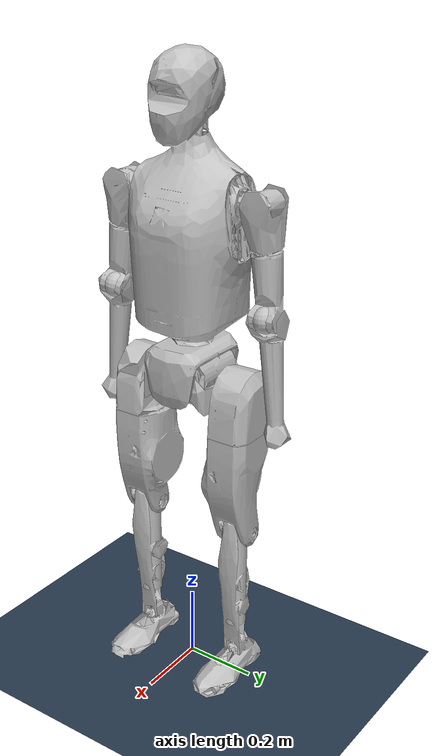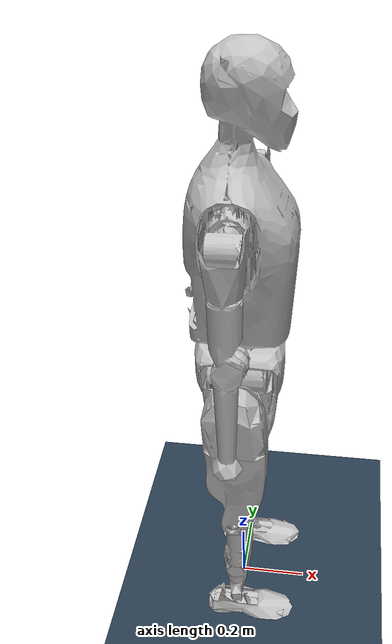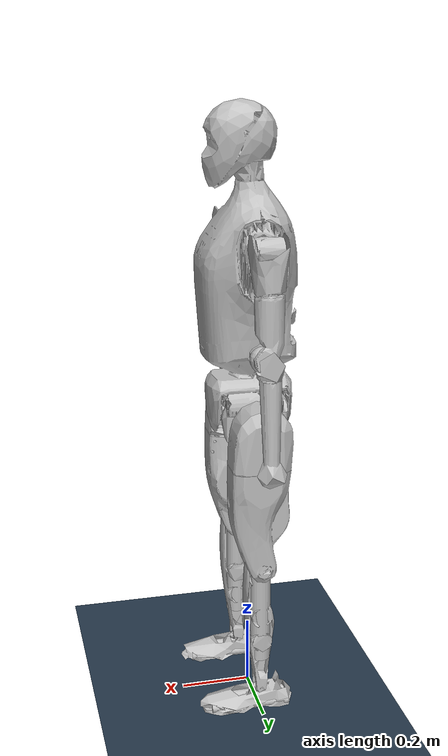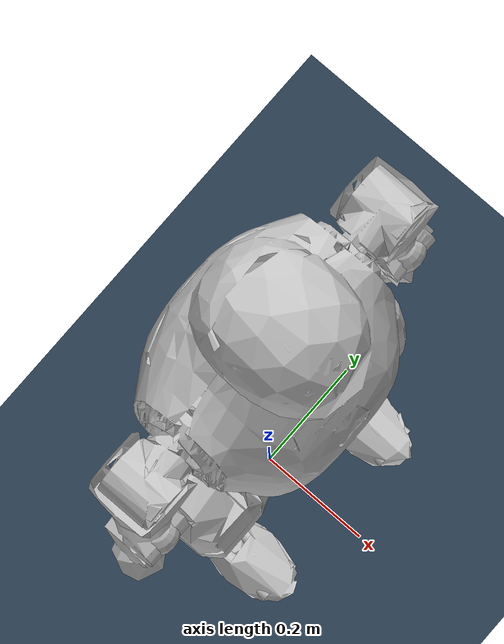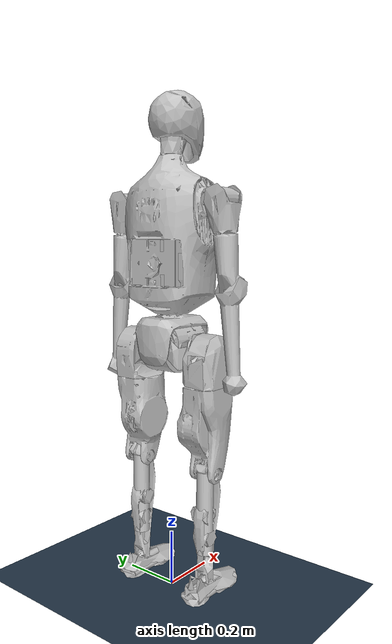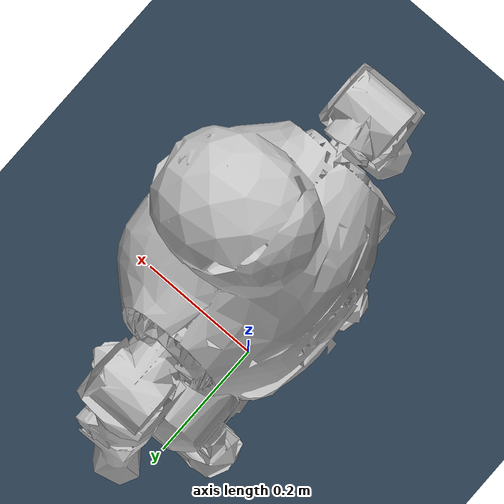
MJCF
<mujoco model="tienkung2_EVT_V4_urdf">
  <option gravity='0 0 -9.81' solver='PGS'/>
  <option integrator="implicitfast" />
  <size njmax="500" nconmax="100" />
  <compiler angle="radian" meshdir="../meshes/" eulerseq="zyx"/>
  <default>
    <joint type="hinge" limited="true" />
  </default>
  <asset>
    <texture type="skybox" builtin="gradient" rgb1="0.3 0.5 0.7" rgb2="0 0 0" width="512" height="512" />
    <texture name="texplane" type="2d" builtin="checker" rgb1=".2 .3 .4" rgb2=".1 0.15 0.2" width="512" height="512" mark="cross" markrgb=".8 .8 .8" />
    <material name="matplane" reflectance="0.3" texture="texplane" texrepeat="1 1" texuniform="true" />
    <mesh name="pelvis" file="pelvis.STL"/>
    <mesh name="hip_roll_l_link" file="hip_roll_l_link.STL"/>
    <mesh name="hip_pitch_l_link" file="hip_pitch_l_link.STL"/>
    <mesh name="hip_yaw_l_link" file="hip_yaw_l_link.STL"/>
    <mesh name="knee_pitch_l_link" file="knee_pitch_l_link.STL"/>
    <mesh name="ankle_pitch_l_link" file="ankle_pitch_l_link.STL"/>
    <mesh name="ankle_roll_l_link" file="ankle_roll_l_link.STL"/>
    <mesh name="hip_roll_r_link" file="hip_roll_r_link.STL"/>
    <mesh name="hip_pitch_r_link" file="hip_pitch_r_link.STL"/>
    <mesh name="hip_yaw_r_link" file="hip_yaw_r_link.STL"/>
    <mesh name="knee_pitch_r_link" file="knee_pitch_r_link.STL"/>
    <mesh name="ankle_pitch_r_link" file="ankle_pitch_r_link.STL"/>
    <mesh name="ankle_roll_r_link" file="ankle_roll_r_link.STL"/>
    <mesh name="shoulder_pitch_l_link" file="shoulder_pitch_l_link.STL"/>
    <mesh name="shoulder_roll_l_link" file="shoulder_roll_l_link.STL"/>
    <mesh name="shoulder_yaw_l_link" file="shoulder_yaw_l_link.STL"/>
    <mesh name="elbow_pitch_l_link" file="elbow_pitch_l_link.STL"/>
    <mesh name="shoulder_pitch_r_link" file="shoulder_pitch_r_link.STL"/>
    <mesh name="shoulder_roll_r_link" file="shoulder_roll_r_link.STL"/>
    <mesh name="shoulder_yaw_r_link" file="shoulder_yaw_r_link.STL"/>
    <mesh name="elbow_pitch_r_link" file="elbow_pitch_r_link.STL"/>
  </asset>

  <worldbody>
    <light directional="true" diffuse=".4 .4 .4" specular="0.1 0.1 0.1" pos="0 0 5.0" dir="0 0 -1" castshadow="false" />
    <light directional="true" diffuse=".6 .6 .6" specular="0.2 0.2 0.2" pos="0 0 4" dir="0 0 -1" />
    <geom name="floor" pos="0 0 0" size="100 100 1" type="plane" material="matplane" margin="0.001" contype="1" conaffinity="15" friction="1 0.005 0.0001" />

    <body name="Base_link" pos="0 0 1.0">
      <freejoint name="root" />
      <inertial pos="0.001537 0.000283 0.177608" quat="0.997803 1.42418e-06 0.0154267 -0.0644277" mass="27.7717" diaginertia="0.952918 0.922015 0.196947"/>
      <geom type="mesh" contype="0" conaffinity="0" group="1" density="0" rgba="0.752941 0.752941 0.752941 1" mesh="pelvis"/>
      <geom size="0.085 0.055" pos="-0.02 0 -0.11" quat="0.707388 0.706825 0 0" type="cylinder" rgba="0.752941 0.752941 0.752941 1"/>
      <camera name="camera1" mode="targetbody" pos="5 0 0.8" euler="1.57 0 1.57" fovy="60"/>
      <camera name="camera2" mode="track" pos="5 0 0.8" euler="1.57 0 1.57" fovy="60"/>
      <site name='imu' size='0.01' pos='0.0 0 0.0'/>
      <body name="hip_roll_l_link" pos="0 0.028 -0.0857">
        <inertial pos="-0.001848 0.055849 -0.036017" quat="0.242041 0.661501 0.270146 0.656394" mass="0.672983" diaginertia="0.0035288 0.00296741 0.00101678"/>
        <joint name="hip_roll_l_joint" pos="0 0 0" axis="1 0 0" range="-0.79 0.79" damping="10"/>
        <geom type="mesh" contype="0" conaffinity="0" group="1" density="0" rgba="0.752941 0.752941 0.752941 1" mesh="hip_roll_l_link"/>
        <body name="hip_pitch_l_link" pos="0 0.122 -0.046">
          <inertial pos="0.001081 -8.8e-05 -0.013133" quat="0.703908 -0.0464278 -0.0604083 0.706193" mass="3.95191" diaginertia="0.0155995 0.0108766 0.00930186"/>
          <joint name="hip_pitch_l_joint" pos="0 0 0" axis="0 1 0" range="-2.79 2.09" damping="10"/>
          <geom type="mesh" contype="0" conaffinity="0" group="1" density="0" rgba="0.752941 0.752941 0.752941 1" mesh="hip_pitch_l_link"/>
          <body name="hip_yaw_l_link" pos="0 -0.00015 -0.0987">
            <inertial pos="0.004102 -0.006542 -0.121068" quat="0.685682 -0.0129439 0.0149542 0.727633" mass="6.6708" diaginertia="0.0533758 0.0495596 0.0178685"/>
            <joint name="hip_yaw_l_joint" pos="0 0 0" axis="0 0 1" range="-1.04 1.04" damping="5"/>
            <geom type="mesh" contype="0" conaffinity="0" group="1" density="0" rgba="0.752941 0.752941 0.752941 1" mesh="hip_yaw_l_link"/>
            <geom size="0.03 0.1" pos="0 0 -0.1" type="cylinder" rgba="0.752941 0.752941 0.752941 1"/>
            <body name="knee_pitch_l_link" pos="0 0.00010715 -0.3013">
              <inertial pos="0.00018 0.001915 -0.178653" quat="0.741662 0.0200239 0.0403837 0.669257" mass="2.31269" diaginertia="0.0309319 0.0304477 0.00269639"/>
              <joint name="knee_pitch_l_joint" pos="0 0 0" axis="0 1 0" range="0 2.39" damping="10"/>
              <geom type="mesh" contype="0" conaffinity="0" group="1" density="0" rgba="0.752941 0.752941 0.752941 1" mesh="knee_pitch_l_link"/>
              <geom size="0.03 0.15" pos="0 0 -0.15" type="cylinder" rgba="0.752941 0.752941 0.752941 1"/>
              <body name="ankle_pitch_l_link" pos="0 0 -0.4">
                <inertial pos="0 0 0" quat="0.5 0.5 -0.5 0.5" mass="0.111609" diaginertia="3.2e-05 1.8e-05 1.8e-05"/>
                <joint name="ankle_pitch_l_joint" pos="0 0 0" axis="0 1 0" range="-1.22 0.5236" damping="2.5"/>
                <geom type="mesh" contype="0" conaffinity="0" group="1" density="0" rgba="0.752941 0.752941 0.752941 1" mesh="ankle_pitch_l_link"/>
                <body name="ankle_roll_l_link">
                  <inertial pos="0.021235 0 -0.032883" quat="0 0.747289 0 0.6645" mass="1.01738" diaginertia="0.0063132 0.006055 0.000954799"/>
                  <joint name="ankle_roll_l_joint" pos="0 0 0" axis="1 0 0" range="-0.4363 0.4363" damping="1.4"/>
                  <geom type="mesh" contype="0" conaffinity="0" group="1" density="0" rgba="0.752941 0.752941 0.752941 1" mesh="ankle_roll_l_link"/>
                  <geom name="toe1_left" contype="2" conaffinity="1" size="0.015 0.115" pos="0.035 0.025 -0.042" quat="0.707105 0 0.707108 0" type="cylinder" rgba="0.752941 0.752941 0.752941 1"/>
                  <geom name="toe2_left" contype="2" conaffinity="1" size="0.015 0.115" pos="0.035 -0.025 -0.042" quat="0.707105 0 0.707108 0" type="cylinder" rgba="0.752941 0.752941 0.752941 1"/>
                </body>
              </body>
            </body>
          </body>
        </body>
      </body>
      <body name="hip_roll_r_link" pos="0 -0.028 -0.0857">
        <inertial pos="-0.001848 -0.055849 -0.036017" quat="-0.242041 0.661501 -0.270146 0.656394" mass="0.672983" diaginertia="0.0035288 0.00296741 0.00101678"/>
        <joint name="hip_roll_r_joint" pos="0 0 0" axis="1 0 0" range="-0.79 0.79" damping="10"/>
        <geom type="mesh" contype="0" conaffinity="0" group="1" density="0" rgba="0.752941 0.752941 0.752941 1" mesh="hip_roll_r_link"/>
        <body name="hip_pitch_r_link" pos="0 -0.122 -0.046">
          <inertial pos="0.001081 8.8e-05 -0.013133" quat="0.706193 -0.0604083 -0.0464278 0.703908" mass="3.95191" diaginertia="0.0155995 0.0108766 0.00930186"/>
          <joint name="hip_pitch_r_joint" pos="0 0 0" axis="0 1 0" range="-2.79 2.09" damping="10"/>
          <geom type="mesh" contype="0" conaffinity="0" group="1" density="0" rgba="0.752941 0.752941 0.752941 1" mesh="hip_pitch_r_link"/>
          <body name="hip_yaw_r_link" pos="0 0 -0.0987">
            <inertial pos="0.004102 0.006542 -0.121068" quat="0.727633 0.0149542 -0.0129439 0.685682" mass="6.6708" diaginertia="0.0533758 0.0495596 0.0178685"/>
            <joint name="hip_yaw_r_joint" pos="0 0 0" axis="0 0 1" range="-1.04 1.04" damping="5"/>
            <geom type="mesh" contype="0" conaffinity="0" group="1" density="0" rgba="0.752941 0.752941 0.752941 1" mesh="hip_yaw_r_link"/>
            <geom size="0.03 0.1" pos="0 0 -0.1" type="cylinder" rgba="0.752941 0.752941 0.752941 1"/>
            <body name="knee_pitch_r_link" pos="0 0.00035002 -0.3013">
              <inertial pos="0.00018 -0.001915 -0.178653" quat="0.669257 0.0403837 0.0200239 0.741662" mass="2.31269" diaginertia="0.0309319 0.0304477 0.00269639"/>
              <joint name="knee_pitch_r_joint" pos="0 0 0" axis="0 1 0" range="0 2.39" damping="10"/>
              <geom type="mesh" contype="0" conaffinity="0" group="1" density="0" rgba="0.752941 0.752941 0.752941 1" mesh="knee_pitch_r_link"/>
              <geom size="0.03 0.15" pos="0 0 -0.15" type="cylinder" rgba="0.752941 0.752941 0.752941 1"/>
              <body name="ankle_pitch_r_link" pos="0 0.00074981 -0.4">
                <inertial pos="0 0 0" quat="0.5 0.5 -0.5 0.5" mass="0.111609" diaginertia="3.2e-05 1.8e-05 1.8e-05"/>
                <joint name="ankle_pitch_r_joint" pos="0 0 0" axis="0 1 0" range="-1.22 0.5236" damping="2.5"/>
                <geom type="mesh" contype="0" conaffinity="0" group="1" density="0" rgba="0.752941 0.752941 0.752941 1" mesh="ankle_pitch_r_link"/>
                <body name="ankle_roll_r_link">
                  <inertial pos="0.021235 0 -0.032883" quat="0 0.747289 0 0.6645" mass="1.01738" diaginertia="0.0063132 0.006055 0.000954799"/>
                  <joint name="ankle_roll_r_joint" pos="0 0 0" axis="1 0 0" range="-0.4363 0.4363" damping="1.4"/>
                  <geom type="mesh" contype="0" conaffinity="0" group="1" density="0" rgba="0.752941 0.752941 0.752941 1" mesh="ankle_roll_r_link"/>
                  <geom name="toe1_right" contype="2" conaffinity="1" size="0.015 0.115" pos="0.035 0.025 -0.042" quat="0.707105 0 0.707108 0" type="cylinder" rgba="0.752941 0.752941 0.752941 1"/>
                  <geom name="toe2_right" contype="2" conaffinity="1" size="0.015 0.115" pos="0.035 -0.025 -0.042" quat="0.707105 0 0.707108 0" type="cylinder" rgba="0.752941 0.752941 0.752941 1"/>
                </body>
              </body>
            </body>
          </body>
        </body>
      </body>
      <body name="shoulder_pitch_l_link" pos="0 0.14034 0.37677" quat="0.999048 0.0436192 0 0">
        <inertial pos="0.006486 0.068343 0.000219" quat="0.591341 0.393139 -0.57492 0.406478" mass="0.469057" diaginertia="0.000468095 0.000406799 0.000362107"/>
        <joint name="shoulder_pitch_l_joint" pos="0 0 0" axis="0 1 0" range="-2.96 2.96" damping="3"/>
        <geom type="mesh" contype="0" conaffinity="0" group="1" density="0" rgba="0.752941 0.752941 0.752941 1" mesh="shoulder_pitch_l_link"/>
        <body name="shoulder_roll_l_link" pos="0 0.073 0">
          <inertial pos="-0.000165 0.001557 -0.049098" quat="0.706276 -0.0203759 0.0112258 0.707554" mass="0.298029" diaginertia="0.00099885 0.000881052 0.000573098"/>
          <joint name="shoulder_roll_l_joint" pos="0 0 0" axis="1 0 0" range="-0.2618 3.4" damping="1.5"/>
          <geom type="mesh" contype="0" conaffinity="0" group="1" density="0" rgba="0.752941 0.752941 0.752941 1" mesh="shoulder_roll_l_link"/>
          <geom size="0.035" rgba="0.752941 0.752941 0.752941 1"/>
          <body name="shoulder_yaw_l_link" pos="0 0 -0.13">
            <inertial pos="0.00809 -0.00102 -0.082881" quat="0.996315 -0.0129283 -0.0731393 0.0428919" mass="0.93608" diaginertia="0.0041934 0.00415703 0.000708565"/>
            <joint name="shoulder_yaw_l_joint" pos="0 0 0" axis="0 0 1" range="-2.96 2.96" damping="1"/>
            <geom type="mesh" contype="0" conaffinity="0" group="1" density="0" rgba="0.752941 0.752941 0.752941 1" mesh="shoulder_yaw_l_link"/>
            <body name="elbow_pitch_l_link" pos="0.019998 0 -0.15">
              <inertial pos="-0.019072 3.1e-05 -0.195441" quat="0.999198 0.00319299 0.00605842 0.0394438" mass="0.553799" diaginertia="0.00848749 0.00844401 0.000474499"/>
              <joint name="elbow_pitch_l_joint" pos="0 0 0" axis="0 1 0" range="-2.61 0.261" damping="1"/>
              <geom type="mesh" contype="0" conaffinity="0" group="1" density="0" rgba="0.752941 0.752941 0.752941 1" mesh="elbow_pitch_l_link"/>
              <geom size="0.035" rgba="0.752941 0.752941 0.752941 1"/>
              <body name="left_hand" pos="0 0 -0.3">
                <inertial pos="0 0 0" mass="1e-3" diaginertia="1e-12 1e-12 1e-12"/>
              </body>
            </body>
          </body>
        </body>
      </body>
      <body name="shoulder_pitch_r_link" pos="0 -0.14034 0.37677" quat="0.999048 -0.0436192 0 0">
        <inertial pos="0.006486 -0.068343 0.000219" quat="0.393139 0.591341 -0.406478 0.57492" mass="0.469057" diaginertia="0.000468095 0.000406799 0.000362107"/>
        <joint name="shoulder_pitch_r_joint" pos="0 0 0" axis="0 1 0" range="-2.96 2.96" damping="3"/>
        <geom type="mesh" contype="0" conaffinity="0" group="1" density="0" rgba="0.752941 0.752941 0.752941 1" mesh="shoulder_pitch_r_link"/>
        <body name="shoulder_roll_r_link" pos="0 -0.073 0">
          <inertial pos="-0.000165 -0.001557 -0.049098" quat="0.707554 0.0112258 -0.0203759 0.706276" mass="0.298029" diaginertia="0.00099885 0.000881052 0.000573098"/>
          <joint name="shoulder_roll_r_joint" pos="0 0 0" axis="1 0 0" range="-3.4 0.2618" damping="1.5"/>
          <geom type="mesh" contype="0" conaffinity="0" group="1" density="0" rgba="0.752941 0.752941 0.752941 1" mesh="shoulder_roll_r_link"/>
          <geom size="0.035" rgba="0.752941 0.752941 0.752941 1"/>
          <body name="shoulder_yaw_r_link" pos="0 0 -0.13">
            <inertial pos="0.00809 0.00102 -0.082881" quat="0.996315 0.0129283 -0.0731393 -0.0428919" mass="0.93608" diaginertia="0.0041934 0.00415703 0.000708565"/>
            <joint name="shoulder_yaw_r_joint" pos="0 0 0" axis="0 0 1" range="-2.96 2.96" damping="1"/>
            <geom type="mesh" contype="0" conaffinity="0" group="1" density="0" rgba="0.752941 0.752941 0.752941 1" mesh="shoulder_yaw_r_link"/>
            <body name="elbow_pitch_r_link" pos="0.020003 0 -0.15">
              <inertial pos="-0.019072 -3.1e-05 -0.195441" quat="0.999198 -0.00319299 0.00605842 -0.0394438" mass="0.553799" diaginertia="0.00848749 0.00844401 0.000474499"/>
              <joint name="elbow_pitch_r_joint" pos="0 0 0" axis="0 1 0" range="-2.61 0.261" damping="1"/>
              <geom type="mesh" contype="0" conaffinity="0" group="1" density="0" rgba="0.752941 0.752941 0.752941 1" mesh="elbow_pitch_r_link"/>
              <geom size="0.035" rgba="0.752941 0.752941 0.752941 1"/>
              <body name="right_hand" pos="0 0 -0.3">
                <inertial pos="0 0 0" mass="1e-3" diaginertia="1e-12 1e-12 1e-12"/>
              </body>
            </body>
          </body>
        </body>
      </body>
      <body name="head" pos="0 0 0.6">
        <inertial pos="0 0 0" mass="1e-3" diaginertia="1e-12 1e-12 1e-12"/>
      </body>
    </body>
  </worldbody>

  <actuator>
    <position name="hip_roll_l_joint" joint="hip_roll_l_joint" kp="700"/>
    <position name="hip_pitch_l_joint" joint="hip_pitch_l_joint" kp="700"/>
    <position name="hip_yaw_l_joint" joint="hip_yaw_l_joint" kp="500"/>
    <position name="knee_pitch_l_joint" joint="knee_pitch_l_joint" kp="700"/>
    <position name="ankle_pitch_l_joint" joint="ankle_pitch_l_joint" kp="30"/>
    <position name="ankle_roll_l_joint" joint="ankle_roll_l_joint" kp="16.8"/>

    <position name="hip_roll_r_joint" joint="hip_roll_r_joint" kp="700"/>
    <position name="hip_pitch_r_joint" joint="hip_pitch_r_joint" kp="700"/>
    <position name="hip_yaw_r_joint" joint="hip_yaw_r_joint" kp="500"/>
    <position name="knee_pitch_r_joint" joint="knee_pitch_r_joint" kp="700"/>
    <position name="ankle_pitch_r_joint" joint="ankle_pitch_r_joint" kp="30"/>
    <position name="ankle_roll_r_joint" joint="ankle_roll_r_joint" kp="16.8"/>

    <position name="shoulder_pitch_l_joint" joint="shoulder_pitch_l_joint" kp="60"/>
    <position name="shoulder_roll_l_joint" joint="shoulder_roll_l_joint" kp="20"/>
    <position name="shoulder_yaw_l_joint" joint="shoulder_yaw_l_joint" kp="10"/>
    <position name="elbow_pitch_l_joint" joint="elbow_pitch_l_joint" kp="10"/>

    <position name="shoulder_pitch_r_joint" joint="shoulder_pitch_r_joint" kp="60"/>
    <position name="shoulder_roll_r_joint" joint="shoulder_roll_r_joint" kp="20"/>
    <position name="shoulder_yaw_r_joint" joint="shoulder_yaw_r_joint" kp="10"/>
    <position name="elbow_pitch_r_joint" joint="elbow_pitch_r_joint" kp="10"/>

  </actuator>
  <sensor>
    <jointpos joint="hip_roll_l_joint" user="6"/>
    <jointpos joint="hip_pitch_l_joint" user="6"/>
    <jointpos joint="hip_yaw_l_joint" user="6"/>
    <jointpos joint="knee_pitch_l_joint" user="6"/>
    <jointpos joint="ankle_pitch_l_joint" user="6"/>
    <jointpos joint="ankle_roll_l_joint" user="6"/>
    <jointpos joint="hip_roll_r_joint" user="6"/>
    <jointpos joint="hip_pitch_r_joint" user="6"/>
    <jointpos joint="hip_yaw_r_joint" user="6"/>
    <jointpos joint="knee_pitch_r_joint" user="6"/>
    <jointpos joint="ankle_pitch_r_joint" user="6"/>
    <jointpos joint="ankle_roll_r_joint" user="6"/>
    <jointpos joint="shoulder_pitch_l_joint" user="6"/>
    <jointpos joint="shoulder_roll_l_joint" user="6"/>
    <jointpos joint="shoulder_yaw_l_joint" user="6"/>
    <jointpos joint="elbow_pitch_l_joint" user="6"/>
    <jointpos joint="shoulder_pitch_r_joint" user="6"/>
    <jointpos joint="shoulder_roll_r_joint" user="6"/>
    <jointpos joint="shoulder_yaw_r_joint" user="6"/>
    <jointpos joint="elbow_pitch_r_joint" user="6"/>

    <jointvel joint="hip_roll_l_joint" user="6"/>
    <jointvel joint="hip_pitch_l_joint" user="6"/>
    <jointvel joint="hip_yaw_l_joint" user="6"/>
    <jointvel joint="knee_pitch_l_joint" user="6"/>
    <jointvel joint="ankle_pitch_l_joint" user="6"/>
    <jointvel joint="ankle_roll_l_joint" user="6"/>
    <jointvel joint="hip_roll_r_joint" user="6"/>
    <jointvel joint="hip_pitch_r_joint" user="6"/>
    <jointvel joint="hip_yaw_r_joint" user="6"/>
    <jointvel joint="knee_pitch_r_joint" user="6"/>
    <jointvel joint="ankle_pitch_r_joint" user="6"/>
    <jointvel joint="ankle_roll_r_joint" user="6"/>
    <jointvel joint="shoulder_pitch_l_joint" user="6"/>
    <jointvel joint="shoulder_roll_l_joint" user="6"/>
    <jointvel joint="shoulder_yaw_l_joint" user="6"/>
    <jointvel joint="elbow_pitch_l_joint" user="6"/>
    <jointvel joint="shoulder_pitch_r_joint" user="6"/>
    <jointvel joint="shoulder_roll_r_joint" user="6"/>
    <jointvel joint="shoulder_yaw_r_joint" user="6"/>
    <jointvel joint="elbow_pitch_r_joint" user="6"/>

    <framequat name='orientation' objtype='site' noise='0.001' objname='imu'/>
    <framepos name='position' objtype='site' noise='0.001' objname='imu'/>
    <gyro name='angular-velocity' site='imu' noise='0.005' cutoff='34.9'/>
    <velocimeter name='linear-velocity' site='imu' noise='0.001' cutoff='30'/>
  </sensor>
</mujoco>
